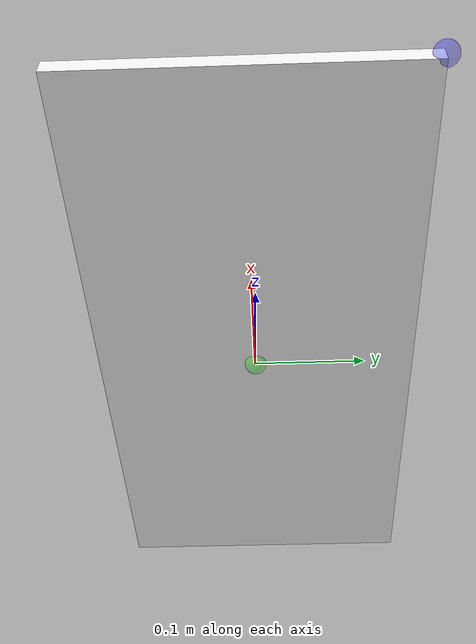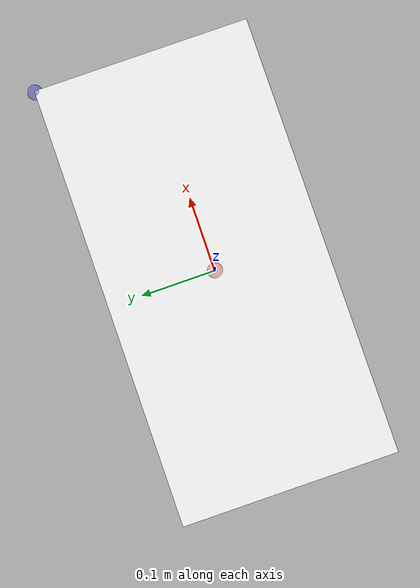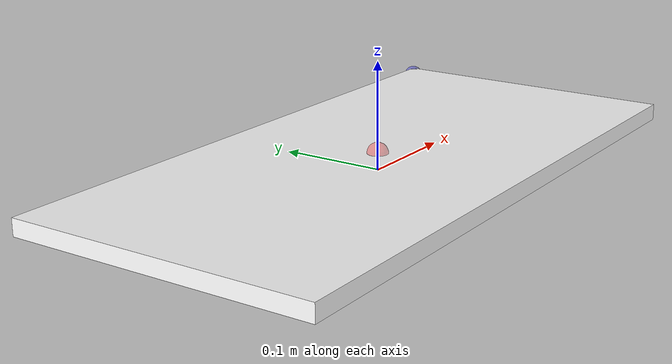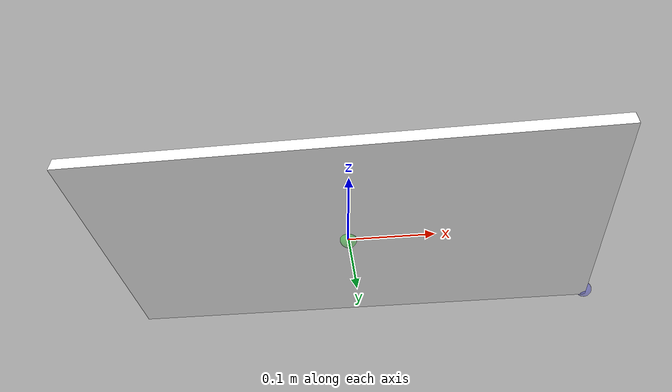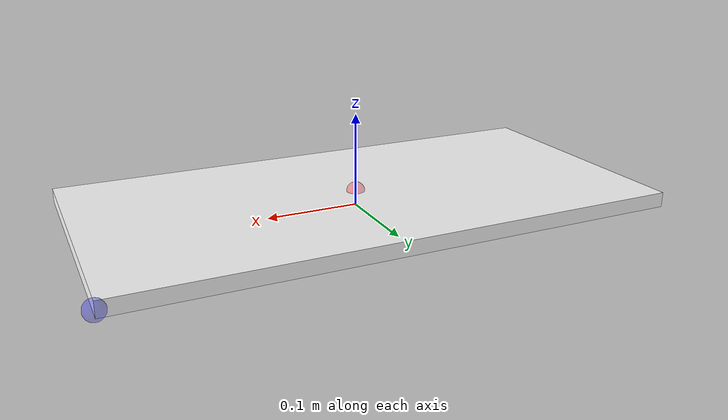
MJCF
<mujoco model="lab_shelf_board">
  <default>
    <default class="visual">
      <geom group="1" type="box" contype="0" conaffinity="0" density="100" material="white_mat"/>
    </default>
    <default class="collision">
      <geom group="0" type="box" density="100" solimp="0.95 0.98 0.001" solref="0.004 1" rgba="1 1 1 0.25"/>
    </default>
    <default class="spawn">
      <geom group="1" rgba="1 1 1 0" contype="0" conaffinity="0" density="0" mass="0"/>
    </default>
  </default>
  <asset>
    <texture name="white_tex" builtin="flat" rgb1="1 1 1" rgb2="1 1 1" width="32" height="32"/>
    <material name="white_mat" texture="white_tex" specular="0.3" shininess="0.4" reflectance="0.15" rgba="1 1 1 1" emission="0.1"/>
  </asset>
  <!-- H = 1.80797 m; shelf z tops = 0.3317, 0.5888, 0.9159, 1.2174, 1.5001, 1.8080 -->
  <worldbody>
    <body>
      <body name="object">
        <geom class="collision" name="board" size="0.294640 0.144780 0.007938" pos="0 0 0.007938"/>
        <geom class="visual" name="board_vis" size="0.294640 0.144780 0.007938" pos="0 0 0.007938"/>
        <geom class="spawn" name="spawn_1" type="box" size="0.05 0.05 0.001" pos="0 -0.2 0.0159"/>
        <geom class="spawn" name="spawn_2" type="box" size="0.05 0.05 0.001" pos="0 0 0.0159"/>
        <geom class="spawn" name="spawn_3" type="box" size="0.05 0.05 0.001" pos="0 0.2 0.0159"/>
      </body>
      <site name="top_site" pos="0 0 0.015876" size="0.01 0.01 0.01" rgba="1 0 0 0.3"/>
      <site name="bottom_site" pos="0 0 0" size="0.01 0.01 0.01" rgba="0 1 0 0.3"/>
      <site name="horizontal_radius_site" pos="0.294640 0.144780 0.007938" size="0.01 0.01 0.01" rgba="0 0 1 0.3"/>
    </body>
  </worldbody>
</mujoco>
